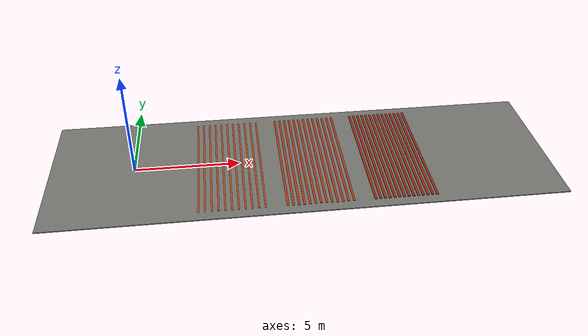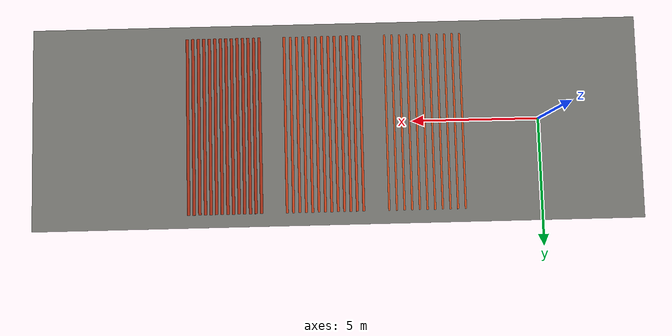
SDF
<?xml version='1.0' encoding='ASCII'?>
<sdf version='1.7'>
  <world name='rough_terrain'>
    <physics type='ode'>
      <max_step_size>0.003</max_step_size>
      <real_time_factor>1.0</real_time_factor>
    </physics>

    <plugin name='ignition::gazebo::systems::Physics' filename='libignition-gazebo-physics-system.so'/>
    <plugin name='ignition::gazebo::systems::UserCommands' filename='libignition-gazebo-user-commands-system.so'/>
    <plugin name='ignition::gazebo::systems::SceneBroadcaster' filename='libignition-gazebo-scene-broadcaster-system.so'/>
    <plugin name='ignition::gazebo::systems::Sensors' filename='libignition-gazebo-sensors-system.so'>
      <render_engine>ogre2</render_engine>
    </plugin>
    <plugin name='ignition::gazebo::systems::Imu' filename='libignition-gazebo-imu-system.so'/>
    <plugin name='ignition::gazebo::systems::NavSat' filename='libignition-gazebo-navsat-system.so'/>

    <scene>
      <ambient>1 1 1 1</ambient>
      <background>0.3 0.7 0.9 1</background>
      <shadows>0</shadows>
      <grid>false</grid>
    </scene>

    <spherical_coordinates>
      <surface_model>EARTH_WGS84</surface_model>
      <world_frame_orientation>ENU</world_frame_orientation>
      <latitude_deg>-22.986687</latitude_deg>
      <longitude_deg>-43.202501</longitude_deg>
      <elevation>0</elevation>
      <heading_deg>0</heading_deg>
    </spherical_coordinates>

    <model name='rough_terrain_ground'>
      <static>true</static>
      <pose>8 0 -0.025 0 0 0</pose>
      <link name='link'>
        <collision name='collision'>
          <geometry>
            <box>
              <size>24 8 0.05</size>
            </box>
          </geometry>
          <surface>
            <friction>
              <ode>
                <mu>1.0</mu>
                <mu2>1.0</mu2>
              </ode>
            </friction>
          </surface>
        </collision>
        <visual name='visual'>
          <geometry>
            <box>
              <size>24 8 0.05</size>
            </box>
          </geometry>
          <material>
            <ambient>0.45 0.45 0.43 1</ambient>
            <diffuse>0.45 0.45 0.43 1</diffuse>
            <specular>0.1 0.1 0.1 1</specular>
          </material>
        </visual>
      </link>
    </model>

    <model name='mild_rough_strips'>
      <static>true</static>
      <link name='link'>
        <collision name='rod_00_collision'><pose>3.00 0 -0.020 1.5708 0 0</pose><geometry><cylinder><radius>0.040</radius><length>7.0</length></cylinder></geometry><surface><friction><ode><mu>1.0</mu><mu2>1.0</mu2></ode></friction></surface></collision>
        <visual name='rod_00_visual'><pose>3.00 0 -0.020 1.5708 0 0</pose><geometry><cylinder><radius>0.040</radius><length>7.0</length></cylinder></geometry><material><ambient>0.85 0.32 0.12 1</ambient><diffuse>0.85 0.32 0.12 1</diffuse></material></visual>
        <collision name='rod_01_collision'><pose>3.30 0 -0.020 1.5708 0 0</pose><geometry><cylinder><radius>0.040</radius><length>7.0</length></cylinder></geometry><surface><friction><ode><mu>1.0</mu><mu2>1.0</mu2></ode></friction></surface></collision>
        <visual name='rod_01_visual'><pose>3.30 0 -0.020 1.5708 0 0</pose><geometry><cylinder><radius>0.040</radius><length>7.0</length></cylinder></geometry><material><ambient>0.85 0.32 0.12 1</ambient><diffuse>0.85 0.32 0.12 1</diffuse></material></visual>
        <collision name='rod_02_collision'><pose>3.60 0 -0.020 1.5708 0 0</pose><geometry><cylinder><radius>0.040</radius><length>7.0</length></cylinder></geometry><surface><friction><ode><mu>1.0</mu><mu2>1.0</mu2></ode></friction></surface></collision>
        <visual name='rod_02_visual'><pose>3.60 0 -0.020 1.5708 0 0</pose><geometry><cylinder><radius>0.040</radius><length>7.0</length></cylinder></geometry><material><ambient>0.85 0.32 0.12 1</ambient><diffuse>0.85 0.32 0.12 1</diffuse></material></visual>
        <collision name='rod_03_collision'><pose>3.90 0 -0.020 1.5708 0 0</pose><geometry><cylinder><radius>0.040</radius><length>7.0</length></cylinder></geometry><surface><friction><ode><mu>1.0</mu><mu2>1.0</mu2></ode></friction></surface></collision>
        <visual name='rod_03_visual'><pose>3.90 0 -0.020 1.5708 0 0</pose><geometry><cylinder><radius>0.040</radius><length>7.0</length></cylinder></geometry><material><ambient>0.85 0.32 0.12 1</ambient><diffuse>0.85 0.32 0.12 1</diffuse></material></visual>
        <collision name='rod_04_collision'><pose>4.20 0 -0.020 1.5708 0 0</pose><geometry><cylinder><radius>0.040</radius><length>7.0</length></cylinder></geometry><surface><friction><ode><mu>1.0</mu><mu2>1.0</mu2></ode></friction></surface></collision>
        <visual name='rod_04_visual'><pose>4.20 0 -0.020 1.5708 0 0</pose><geometry><cylinder><radius>0.040</radius><length>7.0</length></cylinder></geometry><material><ambient>0.85 0.32 0.12 1</ambient><diffuse>0.85 0.32 0.12 1</diffuse></material></visual>
        <collision name='rod_05_collision'><pose>4.50 0 -0.020 1.5708 0 0</pose><geometry><cylinder><radius>0.040</radius><length>7.0</length></cylinder></geometry><surface><friction><ode><mu>1.0</mu><mu2>1.0</mu2></ode></friction></surface></collision>
        <visual name='rod_05_visual'><pose>4.50 0 -0.020 1.5708 0 0</pose><geometry><cylinder><radius>0.040</radius><length>7.0</length></cylinder></geometry><material><ambient>0.85 0.32 0.12 1</ambient><diffuse>0.85 0.32 0.12 1</diffuse></material></visual>
        <collision name='rod_06_collision'><pose>4.80 0 -0.020 1.5708 0 0</pose><geometry><cylinder><radius>0.040</radius><length>7.0</length></cylinder></geometry><surface><friction><ode><mu>1.0</mu><mu2>1.0</mu2></ode></friction></surface></collision>
        <visual name='rod_06_visual'><pose>4.80 0 -0.020 1.5708 0 0</pose><geometry><cylinder><radius>0.040</radius><length>7.0</length></cylinder></geometry><material><ambient>0.85 0.32 0.12 1</ambient><diffuse>0.85 0.32 0.12 1</diffuse></material></visual>
        <collision name='rod_07_collision'><pose>5.10 0 -0.020 1.5708 0 0</pose><geometry><cylinder><radius>0.040</radius><length>7.0</length></cylinder></geometry><surface><friction><ode><mu>1.0</mu><mu2>1.0</mu2></ode></friction></surface></collision>
        <visual name='rod_07_visual'><pose>5.10 0 -0.020 1.5708 0 0</pose><geometry><cylinder><radius>0.040</radius><length>7.0</length></cylinder></geometry><material><ambient>0.85 0.32 0.12 1</ambient><diffuse>0.85 0.32 0.12 1</diffuse></material></visual>
        <collision name='rod_08_collision'><pose>5.40 0 -0.020 1.5708 0 0</pose><geometry><cylinder><radius>0.040</radius><length>7.0</length></cylinder></geometry><surface><friction><ode><mu>1.0</mu><mu2>1.0</mu2></ode></friction></surface></collision>
        <visual name='rod_08_visual'><pose>5.40 0 -0.020 1.5708 0 0</pose><geometry><cylinder><radius>0.040</radius><length>7.0</length></cylinder></geometry><material><ambient>0.85 0.32 0.12 1</ambient><diffuse>0.85 0.32 0.12 1</diffuse></material></visual>
        <collision name='rod_09_collision'><pose>5.70 0 -0.020 1.5708 0 0</pose><geometry><cylinder><radius>0.040</radius><length>7.0</length></cylinder></geometry><surface><friction><ode><mu>1.0</mu><mu2>1.0</mu2></ode></friction></surface></collision>
        <visual name='rod_09_visual'><pose>5.70 0 -0.020 1.5708 0 0</pose><geometry><cylinder><radius>0.040</radius><length>7.0</length></cylinder></geometry><material><ambient>0.85 0.32 0.12 1</ambient><diffuse>0.85 0.32 0.12 1</diffuse></material></visual>
        <collision name='rod_10_collision'><pose>6.00 0 -0.020 1.5708 0 0</pose><geometry><cylinder><radius>0.040</radius><length>7.0</length></cylinder></geometry><surface><friction><ode><mu>1.0</mu><mu2>1.0</mu2></ode></friction></surface></collision>
        <visual name='rod_10_visual'><pose>6.00 0 -0.020 1.5708 0 0</pose><geometry><cylinder><radius>0.040</radius><length>7.0</length></cylinder></geometry><material><ambient>0.85 0.32 0.12 1</ambient><diffuse>0.85 0.32 0.12 1</diffuse></material></visual>
      </link>
    </model>

    <model name='medium_rough_strips'>
      <static>true</static>
      <link name='link'>
        <collision name='rod_00_collision'><pose>7.00 0 -0.015 1.5708 0 0</pose><geometry><cylinder><radius>0.050</radius><length>7.0</length></cylinder></geometry><surface><friction><ode><mu>1.0</mu><mu2>1.0</mu2></ode></friction></surface></collision>
        <visual name='rod_00_visual'><pose>7.00 0 -0.015 1.5708 0 0</pose><geometry><cylinder><radius>0.050</radius><length>7.0</length></cylinder></geometry><material><ambient>0.78 0.25 0.1 1</ambient><diffuse>0.78 0.25 0.1 1</diffuse></material></visual>
        <collision name='rod_01_collision'><pose>7.25 0 -0.015 1.5708 0 0</pose><geometry><cylinder><radius>0.050</radius><length>7.0</length></cylinder></geometry><surface><friction><ode><mu>1.0</mu><mu2>1.0</mu2></ode></friction></surface></collision>
        <visual name='rod_01_visual'><pose>7.25 0 -0.015 1.5708 0 0</pose><geometry><cylinder><radius>0.050</radius><length>7.0</length></cylinder></geometry><material><ambient>0.78 0.25 0.1 1</ambient><diffuse>0.78 0.25 0.1 1</diffuse></material></visual>
        <collision name='rod_02_collision'><pose>7.50 0 -0.015 1.5708 0 0</pose><geometry><cylinder><radius>0.050</radius><length>7.0</length></cylinder></geometry><surface><friction><ode><mu>1.0</mu><mu2>1.0</mu2></ode></friction></surface></collision>
        <visual name='rod_02_visual'><pose>7.50 0 -0.015 1.5708 0 0</pose><geometry><cylinder><radius>0.050</radius><length>7.0</length></cylinder></geometry><material><ambient>0.78 0.25 0.1 1</ambient><diffuse>0.78 0.25 0.1 1</diffuse></material></visual>
        <collision name='rod_03_collision'><pose>7.75 0 -0.015 1.5708 0 0</pose><geometry><cylinder><radius>0.050</radius><length>7.0</length></cylinder></geometry><surface><friction><ode><mu>1.0</mu><mu2>1.0</mu2></ode></friction></surface></collision>
        <visual name='rod_03_visual'><pose>7.75 0 -0.015 1.5708 0 0</pose><geometry><cylinder><radius>0.050</radius><length>7.0</length></cylinder></geometry><material><ambient>0.78 0.25 0.1 1</ambient><diffuse>0.78 0.25 0.1 1</diffuse></material></visual>
        <collision name='rod_04_collision'><pose>8.00 0 -0.015 1.5708 0 0</pose><geometry><cylinder><radius>0.050</radius><length>7.0</length></cylinder></geometry><surface><friction><ode><mu>1.0</mu><mu2>1.0</mu2></ode></friction></surface></collision>
        <visual name='rod_04_visual'><pose>8.00 0 -0.015 1.5708 0 0</pose><geometry><cylinder><radius>0.050</radius><length>7.0</length></cylinder></geometry><material><ambient>0.78 0.25 0.1 1</ambient><diffuse>0.78 0.25 0.1 1</diffuse></material></visual>
        <collision name='rod_05_collision'><pose>8.25 0 -0.015 1.5708 0 0</pose><geometry><cylinder><radius>0.050</radius><length>7.0</length></cylinder></geometry><surface><friction><ode><mu>1.0</mu><mu2>1.0</mu2></ode></friction></surface></collision>
        <visual name='rod_05_visual'><pose>8.25 0 -0.015 1.5708 0 0</pose><geometry><cylinder><radius>0.050</radius><length>7.0</length></cylinder></geometry><material><ambient>0.78 0.25 0.1 1</ambient><diffuse>0.78 0.25 0.1 1</diffuse></material></visual>
        <collision name='rod_06_collision'><pose>8.50 0 -0.015 1.5708 0 0</pose><geometry><cylinder><radius>0.050</radius><length>7.0</length></cylinder></geometry><surface><friction><ode><mu>1.0</mu><mu2>1.0</mu2></ode></friction></surface></collision>
        <visual name='rod_06_visual'><pose>8.50 0 -0.015 1.5708 0 0</pose><geometry><cylinder><radius>0.050</radius><length>7.0</length></cylinder></geometry><material><ambient>0.78 0.25 0.1 1</ambient><diffuse>0.78 0.25 0.1 1</diffuse></material></visual>
        <collision name='rod_07_collision'><pose>8.75 0 -0.015 1.5708 0 0</pose><geometry><cylinder><radius>0.050</radius><length>7.0</length></cylinder></geometry><surface><friction><ode><mu>1.0</mu><mu2>1.0</mu2></ode></friction></surface></collision>
        <visual name='rod_07_visual'><pose>8.75 0 -0.015 1.5708 0 0</pose><geometry><cylinder><radius>0.050</radius><length>7.0</length></cylinder></geometry><material><ambient>0.78 0.25 0.1 1</ambient><diffuse>0.78 0.25 0.1 1</diffuse></material></visual>
        <collision name='rod_08_collision'><pose>9.00 0 -0.015 1.5708 0 0</pose><geometry><cylinder><radius>0.050</radius><length>7.0</length></cylinder></geometry><surface><friction><ode><mu>1.0</mu><mu2>1.0</mu2></ode></friction></surface></collision>
        <visual name='rod_08_visual'><pose>9.00 0 -0.015 1.5708 0 0</pose><geometry><cylinder><radius>0.050</radius><length>7.0</length></cylinder></geometry><material><ambient>0.78 0.25 0.1 1</ambient><diffuse>0.78 0.25 0.1 1</diffuse></material></visual>
        <collision name='rod_09_collision'><pose>9.25 0 -0.015 1.5708 0 0</pose><geometry><cylinder><radius>0.050</radius><length>7.0</length></cylinder></geometry><surface><friction><ode><mu>1.0</mu><mu2>1.0</mu2></ode></friction></surface></collision>
        <visual name='rod_09_visual'><pose>9.25 0 -0.015 1.5708 0 0</pose><geometry><cylinder><radius>0.050</radius><length>7.0</length></cylinder></geometry><material><ambient>0.78 0.25 0.1 1</ambient><diffuse>0.78 0.25 0.1 1</diffuse></material></visual>
        <collision name='rod_10_collision'><pose>9.50 0 -0.015 1.5708 0 0</pose><geometry><cylinder><radius>0.050</radius><length>7.0</length></cylinder></geometry><surface><friction><ode><mu>1.0</mu><mu2>1.0</mu2></ode></friction></surface></collision>
        <visual name='rod_10_visual'><pose>9.50 0 -0.015 1.5708 0 0</pose><geometry><cylinder><radius>0.050</radius><length>7.0</length></cylinder></geometry><material><ambient>0.78 0.25 0.1 1</ambient><diffuse>0.78 0.25 0.1 1</diffuse></material></visual>
        <collision name='rod_11_collision'><pose>9.75 0 -0.015 1.5708 0 0</pose><geometry><cylinder><radius>0.050</radius><length>7.0</length></cylinder></geometry><surface><friction><ode><mu>1.0</mu><mu2>1.0</mu2></ode></friction></surface></collision>
        <visual name='rod_11_visual'><pose>9.75 0 -0.015 1.5708 0 0</pose><geometry><cylinder><radius>0.050</radius><length>7.0</length></cylinder></geometry><material><ambient>0.78 0.25 0.1 1</ambient><diffuse>0.78 0.25 0.1 1</diffuse></material></visual>
        <collision name='rod_12_collision'><pose>10.00 0 -0.015 1.5708 0 0</pose><geometry><cylinder><radius>0.050</radius><length>7.0</length></cylinder></geometry><surface><friction><ode><mu>1.0</mu><mu2>1.0</mu2></ode></friction></surface></collision>
        <visual name='rod_12_visual'><pose>10.00 0 -0.015 1.5708 0 0</pose><geometry><cylinder><radius>0.050</radius><length>7.0</length></cylinder></geometry><material><ambient>0.78 0.25 0.1 1</ambient><diffuse>0.78 0.25 0.1 1</diffuse></material></visual>
      </link>
    </model>

    <model name='severe_rough_strips'>
      <static>true</static>
      <link name='link'>
        <collision name='rod_00_collision'><pose>11.00 0 -0.010 1.5708 0 0</pose><geometry><cylinder><radius>0.060</radius><length>7.0</length></cylinder></geometry><surface><friction><ode><mu>1.0</mu><mu2>1.0</mu2></ode></friction></surface></collision>
        <visual name='rod_00_visual'><pose>11.00 0 -0.010 1.5708 0 0</pose><geometry><cylinder><radius>0.060</radius><length>7.0</length></cylinder></geometry><material><ambient>0.65 0.18 0.08 1</ambient><diffuse>0.65 0.18 0.08 1</diffuse></material></visual>
        <collision name='rod_01_collision'><pose>11.22 0 -0.010 1.5708 0 0</pose><geometry><cylinder><radius>0.060</radius><length>7.0</length></cylinder></geometry><surface><friction><ode><mu>1.0</mu><mu2>1.0</mu2></ode></friction></surface></collision>
        <visual name='rod_01_visual'><pose>11.22 0 -0.010 1.5708 0 0</pose><geometry><cylinder><radius>0.060</radius><length>7.0</length></cylinder></geometry><material><ambient>0.65 0.18 0.08 1</ambient><diffuse>0.65 0.18 0.08 1</diffuse></material></visual>
        <collision name='rod_02_collision'><pose>11.44 0 -0.010 1.5708 0 0</pose><geometry><cylinder><radius>0.060</radius><length>7.0</length></cylinder></geometry><surface><friction><ode><mu>1.0</mu><mu2>1.0</mu2></ode></friction></surface></collision>
        <visual name='rod_02_visual'><pose>11.44 0 -0.010 1.5708 0 0</pose><geometry><cylinder><radius>0.060</radius><length>7.0</length></cylinder></geometry><material><ambient>0.65 0.18 0.08 1</ambient><diffuse>0.65 0.18 0.08 1</diffuse></material></visual>
        <collision name='rod_03_collision'><pose>11.66 0 -0.010 1.5708 0 0</pose><geometry><cylinder><radius>0.060</radius><length>7.0</length></cylinder></geometry><surface><friction><ode><mu>1.0</mu><mu2>1.0</mu2></ode></friction></surface></collision>
        <visual name='rod_03_visual'><pose>11.66 0 -0.010 1.5708 0 0</pose><geometry><cylinder><radius>0.060</radius><length>7.0</length></cylinder></geometry><material><ambient>0.65 0.18 0.08 1</ambient><diffuse>0.65 0.18 0.08 1</diffuse></material></visual>
        <collision name='rod_04_collision'><pose>11.88 0 -0.010 1.5708 0 0</pose><geometry><cylinder><radius>0.060</radius><length>7.0</length></cylinder></geometry><surface><friction><ode><mu>1.0</mu><mu2>1.0</mu2></ode></friction></surface></collision>
        <visual name='rod_04_visual'><pose>11.88 0 -0.010 1.5708 0 0</pose><geometry><cylinder><radius>0.060</radius><length>7.0</length></cylinder></geometry><material><ambient>0.65 0.18 0.08 1</ambient><diffuse>0.65 0.18 0.08 1</diffuse></material></visual>
        <collision name='rod_05_collision'><pose>12.10 0 -0.010 1.5708 0 0</pose><geometry><cylinder><radius>0.060</radius><length>7.0</length></cylinder></geometry><surface><friction><ode><mu>1.0</mu><mu2>1.0</mu2></ode></friction></surface></collision>
        <visual name='rod_05_visual'><pose>12.10 0 -0.010 1.5708 0 0</pose><geometry><cylinder><radius>0.060</radius><length>7.0</length></cylinder></geometry><material><ambient>0.65 0.18 0.08 1</ambient><diffuse>0.65 0.18 0.08 1</diffuse></material></visual>
        <collision name='rod_06_collision'><pose>12.32 0 -0.010 1.5708 0 0</pose><geometry><cylinder><radius>0.060</radius><length>7.0</length></cylinder></geometry><surface><friction><ode><mu>1.0</mu><mu2>1.0</mu2></ode></friction></surface></collision>
        <visual name='rod_06_visual'><pose>12.32 0 -0.010 1.5708 0 0</pose><geometry><cylinder><radius>0.060</radius><length>7.0</length></cylinder></geometry><material><ambient>0.65 0.18 0.08 1</ambient><diffuse>0.65 0.18 0.08 1</diffuse></material></visual>
        <collision name='rod_07_collision'><pose>12.54 0 -0.010 1.5708 0 0</pose><geometry><cylinder><radius>0.060</radius><length>7.0</length></cylinder></geometry><surface><friction><ode><mu>1.0</mu><mu2>1.0</mu2></ode></friction></surface></collision>
        <visual name='rod_07_visual'><pose>12.54 0 -0.010 1.5708 0 0</pose><geometry><cylinder><radius>0.060</radius><length>7.0</length></cylinder></geometry><material><ambient>0.65 0.18 0.08 1</ambient><diffuse>0.65 0.18 0.08 1</diffuse></material></visual>
        <collision name='rod_08_collision'><pose>12.76 0 -0.010 1.5708 0 0</pose><geometry><cylinder><radius>0.060</radius><length>7.0</length></cylinder></geometry><surface><friction><ode><mu>1.0</mu><mu2>1.0</mu2></ode></friction></surface></collision>
        <visual name='rod_08_visual'><pose>12.76 0 -0.010 1.5708 0 0</pose><geometry><cylinder><radius>0.060</radius><length>7.0</length></cylinder></geometry><material><ambient>0.65 0.18 0.08 1</ambient><diffuse>0.65 0.18 0.08 1</diffuse></material></visual>
        <collision name='rod_09_collision'><pose>12.98 0 -0.010 1.5708 0 0</pose><geometry><cylinder><radius>0.060</radius><length>7.0</length></cylinder></geometry><surface><friction><ode><mu>1.0</mu><mu2>1.0</mu2></ode></friction></surface></collision>
        <visual name='rod_09_visual'><pose>12.98 0 -0.010 1.5708 0 0</pose><geometry><cylinder><radius>0.060</radius><length>7.0</length></cylinder></geometry><material><ambient>0.65 0.18 0.08 1</ambient><diffuse>0.65 0.18 0.08 1</diffuse></material></visual>
        <collision name='rod_10_collision'><pose>13.20 0 -0.010 1.5708 0 0</pose><geometry><cylinder><radius>0.060</radius><length>7.0</length></cylinder></geometry><surface><friction><ode><mu>1.0</mu><mu2>1.0</mu2></ode></friction></surface></collision>
        <visual name='rod_10_visual'><pose>13.20 0 -0.010 1.5708 0 0</pose><geometry><cylinder><radius>0.060</radius><length>7.0</length></cylinder></geometry><material><ambient>0.65 0.18 0.08 1</ambient><diffuse>0.65 0.18 0.08 1</diffuse></material></visual>
        <collision name='rod_11_collision'><pose>13.42 0 -0.010 1.5708 0 0</pose><geometry><cylinder><radius>0.060</radius><length>7.0</length></cylinder></geometry><surface><friction><ode><mu>1.0</mu><mu2>1.0</mu2></ode></friction></surface></collision>
        <visual name='rod_11_visual'><pose>13.42 0 -0.010 1.5708 0 0</pose><geometry><cylinder><radius>0.060</radius><length>7.0</length></cylinder></geometry><material><ambient>0.65 0.18 0.08 1</ambient><diffuse>0.65 0.18 0.08 1</diffuse></material></visual>
        <collision name='rod_12_collision'><pose>13.64 0 -0.010 1.5708 0 0</pose><geometry><cylinder><radius>0.060</radius><length>7.0</length></cylinder></geometry><surface><friction><ode><mu>1.0</mu><mu2>1.0</mu2></ode></friction></surface></collision>
        <visual name='rod_12_visual'><pose>13.64 0 -0.010 1.5708 0 0</pose><geometry><cylinder><radius>0.060</radius><length>7.0</length></cylinder></geometry><material><ambient>0.65 0.18 0.08 1</ambient><diffuse>0.65 0.18 0.08 1</diffuse></material></visual>
        <collision name='rod_13_collision'><pose>13.86 0 -0.010 1.5708 0 0</pose><geometry><cylinder><radius>0.060</radius><length>7.0</length></cylinder></geometry><surface><friction><ode><mu>1.0</mu><mu2>1.0</mu2></ode></friction></surface></collision>
        <visual name='rod_13_visual'><pose>13.86 0 -0.010 1.5708 0 0</pose><geometry><cylinder><radius>0.060</radius><length>7.0</length></cylinder></geometry><material><ambient>0.65 0.18 0.08 1</ambient><diffuse>0.65 0.18 0.08 1</diffuse></material></visual>
      </link>
    </model>
  </world>
</sdf>
